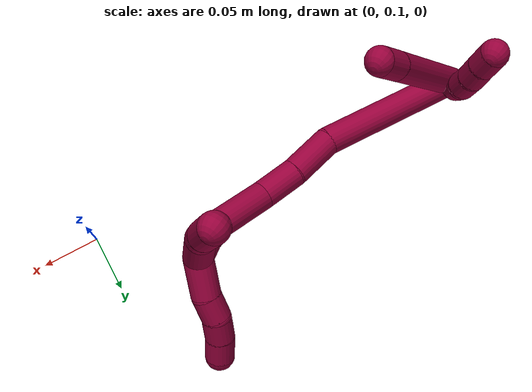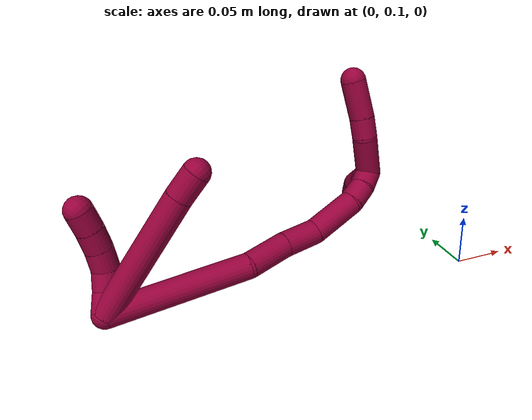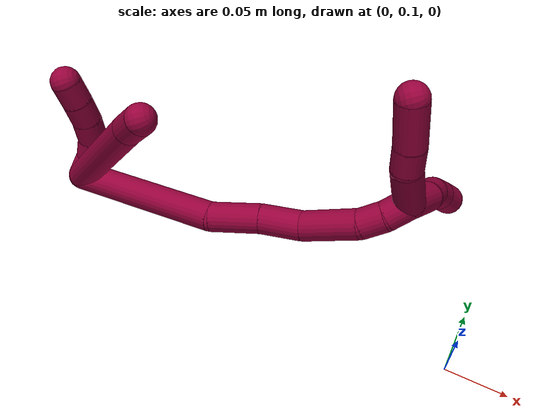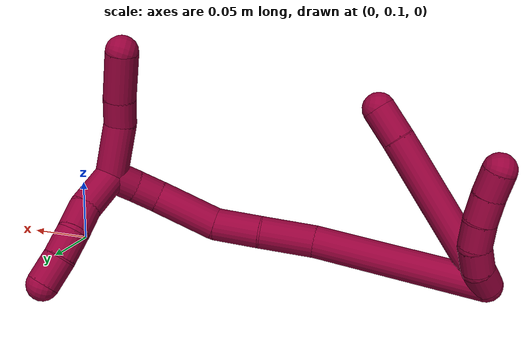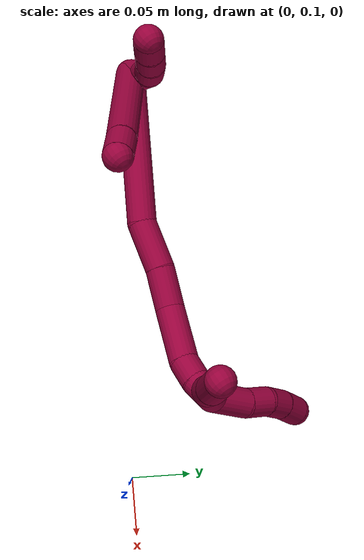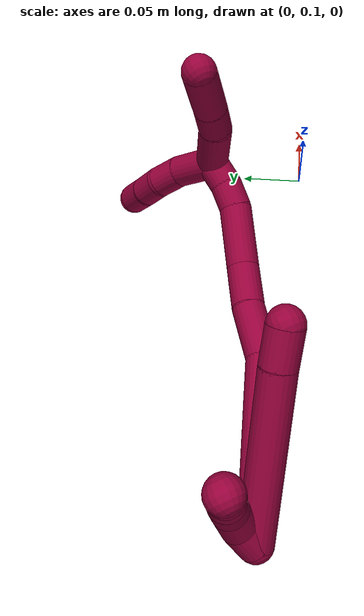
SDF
<sdf version="1.7">
 <world name="default">
  <model name="8">
   <static>0</static>
   <link name="8">
    <collision name="collision-cylinder-e_1_2_8">
     <pose>0.0312 -0.029872 -0.04415 2.54674 0.529544 1.44845</pose>
     <geometry><cylinder><radius>0.0125</radius><length>0.123531</length></cylinder></geometry>
     <surface>
      <friction><ode><mu>1.16</mu><mu2>1.16</mu2><slip1>0</slip1><slip2>0</slip2></ode></friction>
      <contact><ode><kp>1e+06</kp><kd>1</kd><max_vel>0</max_vel><min_depth>0.001</min_depth></ode></contact>
     </surface>
    </collision>
    <visual name="visual-cylinder-e_1_2_8">
     <pose>0.0312 -0.029872 -0.04415 2.54674 0.529544 1.44845</pose>
     <geometry><cylinder><radius>0.0125</radius><length>0.123531</length></cylinder></geometry>
     <material><ambient>0.584314 0 0.227451 1</ambient></material>
    </visual>
    <collision name="collision-cylinder-e_2_8_6">
     <pose>0.068509 -0.066782 -0.097696 2.49871 0.479718 1.26697</pose>
     <geometry><cylinder><radius>0.0125</radius><length>0.026469</length></cylinder></geometry>
     <surface>
      <friction><ode><mu>1.16</mu><mu2>1.16</mu2><slip1>0</slip1><slip2>0</slip2></ode></friction>
      <contact><ode><kp>1e+06</kp><kd>1</kd><max_vel>0</max_vel><min_depth>0.001</min_depth></ode></contact>
     </surface>
    </collision>
    <visual name="visual-cylinder-e_2_8_6">
     <pose>0.068509 -0.066782 -0.097696 2.49871 0.479718 1.26697</pose>
     <geometry><cylinder><radius>0.0125</radius><length>0.026469</length></cylinder></geometry>
     <material><ambient>0.584314 0 0.227451 1</ambient></material>
    </visual>
    <collision name="collision-cylinder-e_1_2_9">
     <pose>0.006618 0.001915 -0.007248 -2.88335 0.72322 -2.48023</pose>
     <geometry><cylinder><radius>0.0125</radius><length>0.02</length></cylinder></geometry>
     <surface>
      <friction><ode><mu>1.16</mu><mu2>1.16</mu2><slip1>0</slip1><slip2>0</slip2></ode></friction>
      <contact><ode><kp>1e+06</kp><kd>1</kd><max_vel>0</max_vel><min_depth>0.001</min_depth></ode></contact>
     </surface>
    </collision>
    <visual name="visual-cylinder-e_1_2_9">
     <pose>0.006618 0.001915 -0.007248 -2.88335 0.72322 -2.48023</pose>
     <geometry><cylinder><radius>0.0125</radius><length>0.02</length></cylinder></geometry>
     <material><ambient>0.584314 0 0.227451 1</ambient></material>
    </visual>
    <collision name="collision-cylinder-e_2_9_10">
     <pose>0.021594 0.003762 -0.019987 3.12928 0.989497 3.11878</pose>
     <geometry><cylinder><radius>0.0125</radius><length>0.02</length></cylinder></geometry>
     <surface>
      <friction><ode><mu>1.16</mu><mu2>1.16</mu2><slip1>0</slip1><slip2>0</slip2></ode></friction>
      <contact><ode><kp>1e+06</kp><kd>1</kd><max_vel>0</max_vel><min_depth>0.001</min_depth></ode></contact>
     </surface>
    </collision>
    <visual name="visual-cylinder-e_2_9_10">
     <pose>0.021594 0.003762 -0.019987 3.12928 0.989497 3.11878</pose>
     <geometry><cylinder><radius>0.0125</radius><length>0.02</length></cylinder></geometry>
     <material><ambient>0.584314 0 0.227451 1</ambient></material>
    </visual>
    <collision name="collision-cylinder-e_3_10_11">
     <pose>0.039585 0.002852 -0.028022 2.82204 1.29945 2.72358</pose>
     <geometry><cylinder><radius>0.0125</radius><length>0.02</length></cylinder></geometry>
     <surface>
      <friction><ode><mu>1.16</mu><mu2>1.16</mu2><slip1>0</slip1><slip2>0</slip2></ode></friction>
      <contact><ode><kp>1e+06</kp><kd>1</kd><max_vel>0</max_vel><min_depth>0.001</min_depth></ode></contact>
     </surface>
    </collision>
    <visual name="visual-cylinder-e_3_10_11">
     <pose>0.039585 0.002852 -0.028022 2.82204 1.29945 2.72358</pose>
     <geometry><cylinder><radius>0.0125</radius><length>0.02</length></cylinder></geometry>
     <material><ambient>0.584314 0 0.227451 1</ambient></material>
    </visual>
    <collision name="collision-cylinder-e_4_11_12">
     <pose>0.059054 0.000735 -0.031852 2.36003 1.38882 2.22281</pose>
     <geometry><cylinder><radius>0.0125</radius><length>0.02</length></cylinder></geometry>
     <surface>
      <friction><ode><mu>1.16</mu><mu2>1.16</mu2><slip1>0</slip1><slip2>0</slip2></ode></friction>
      <contact><ode><kp>1e+06</kp><kd>1</kd><max_vel>0</max_vel><min_depth>0.001</min_depth></ode></contact>
     </surface>
    </collision>
    <visual name="visual-cylinder-e_4_11_12">
     <pose>0.059054 0.000735 -0.031852 2.36003 1.38882 2.22281</pose>
     <geometry><cylinder><radius>0.0125</radius><length>0.02</length></cylinder></geometry>
     <material><ambient>0.584314 0 0.227451 1</ambient></material>
    </visual>
    <collision name="collision-cylinder-e_5_12_5">
     <pose>0.078826 -0.001433 -0.033815 2.22063 1.4583 2.12788</pose>
     <geometry><cylinder><radius>0.0125</radius><length>0.02</length></cylinder></geometry>
     <surface>
      <friction><ode><mu>1.16</mu><mu2>1.16</mu2><slip1>0</slip1><slip2>0</slip2></ode></friction>
      <contact><ode><kp>1e+06</kp><kd>1</kd><max_vel>0</max_vel><min_depth>0.001</min_depth></ode></contact>
     </surface>
    </collision>
    <visual name="visual-cylinder-e_5_12_5">
     <pose>0.078826 -0.001433 -0.033815 2.22063 1.4583 2.12788</pose>
     <geometry><cylinder><radius>0.0125</radius><length>0.02</length></cylinder></geometry>
     <material><ambient>0.584314 0 0.227451 1</ambient></material>
    </visual>
    <collision name="collision-cylinder-e_1_2_13">
     <pose>-0.01944 -0.02837 -0.056332 2.67505 -0.298985 -1.12997</pose>
     <geometry><cylinder><radius>0.0125</radius><length>0.132</length></cylinder></geometry>
     <surface>
      <friction><ode><mu>1.16</mu><mu2>1.16</mu2><slip1>0</slip1><slip2>0</slip2></ode></friction>
      <contact><ode><kp>1e+06</kp><kd>1</kd><max_vel>0</max_vel><min_depth>0.001</min_depth></ode></contact>
     </surface>
    </collision>
    <visual name="visual-cylinder-e_1_2_13">
     <pose>-0.01944 -0.02837 -0.056332 2.67505 -0.298985 -1.12997</pose>
     <geometry><cylinder><radius>0.0125</radius><length>0.132</length></cylinder></geometry>
     <material><ambient>0.584314 0 0.227451 1</ambient></material>
    </visual>
    <collision name="collision-cylinder-e_2_13_14">
     <pose>-0.043771 -0.060201 -0.133113 2.97392 -0.231558 -1.89018</pose>
     <geometry><cylinder><radius>0.0125</radius><length>0.042618</length></cylinder></geometry>
     <surface>
      <friction><ode><mu>1.16</mu><mu2>1.16</mu2><slip1>0</slip1><slip2>0</slip2></ode></friction>
      <contact><ode><kp>1e+06</kp><kd>1</kd><max_vel>0</max_vel><min_depth>0.001</min_depth></ode></contact>
     </surface>
    </collision>
    <visual name="visual-cylinder-e_2_13_14">
     <pose>-0.043771 -0.060201 -0.133113 2.97392 -0.231558 -1.89018</pose>
     <geometry><cylinder><radius>0.0125</radius><length>0.042618</length></cylinder></geometry>
     <material><ambient>0.584314 0 0.227451 1</ambient></material>
    </visual>
    <collision name="collision-cylinder-e_3_14_15">
     <pose>-0.05374 -0.068586 -0.169669 2.84493 -0.292847 -1.55766</pose>
     <geometry><cylinder><radius>0.0125</radius><length>0.035183</length></cylinder></geometry>
     <surface>
      <friction><ode><mu>1.16</mu><mu2>1.16</mu2><slip1>0</slip1><slip2>0</slip2></ode></friction>
      <contact><ode><kp>1e+06</kp><kd>1</kd><max_vel>0</max_vel><min_depth>0.001</min_depth></ode></contact>
     </surface>
    </collision>
    <visual name="visual-cylinder-e_3_14_15">
     <pose>-0.05374 -0.068586 -0.169669 2.84493 -0.292847 -1.55766</pose>
     <geometry><cylinder><radius>0.0125</radius><length>0.035183</length></cylinder></geometry>
     <material><ambient>0.584314 0 0.227451 1</ambient></material>
    </visual>
    <collision name="collision-cylinder-e_4_15_16">
     <pose>-0.058715 -0.081136 -0.209182 2.82661 0.004161 0.026202</pose>
     <geometry><cylinder><radius>0.0125</radius><length>0.049234</length></cylinder></geometry>
     <surface>
      <friction><ode><mu>1.16</mu><mu2>1.16</mu2><slip1>0</slip1><slip2>0</slip2></ode></friction>
      <contact><ode><kp>1e+06</kp><kd>1</kd><max_vel>0</max_vel><min_depth>0.001</min_depth></ode></contact>
     </surface>
    </collision>
    <visual name="visual-cylinder-e_4_15_16">
     <pose>-0.058715 -0.081136 -0.209182 2.82661 0.004161 0.026202</pose>
     <geometry><cylinder><radius>0.0125</radius><length>0.049234</length></cylinder></geometry>
     <material><ambient>0.584314 0 0.227451 1</ambient></material>
    </visual>
    <collision name="collision-cylinder-e_5_16_17">
     <pose>-0.057312 -0.089402 -0.242874 3.07941 0.125523 2.22249</pose>
     <geometry><cylinder><radius>0.0125</radius><length>0.020777</length></cylinder></geometry>
     <surface>
      <friction><ode><mu>1.16</mu><mu2>1.16</mu2><slip1>0</slip1><slip2>0</slip2></ode></friction>
      <contact><ode><kp>1e+06</kp><kd>1</kd><max_vel>0</max_vel><min_depth>0.001</min_depth></ode></contact>
     </surface>
    </collision>
    <visual name="visual-cylinder-e_5_16_17">
     <pose>-0.057312 -0.089402 -0.242874 3.07941 0.125523 2.22249</pose>
     <geometry><cylinder><radius>0.0125</radius><length>0.020777</length></cylinder></geometry>
     <material><ambient>0.584314 0 0.227451 1</ambient></material>
    </visual>
    <collision name="collision-cylinder-e_6_17_1">
     <pose>-0.053944 -0.08876 -0.262957 -3.01143 0.206299 -2.01778</pose>
     <geometry><cylinder><radius>0.0125</radius><length>0.020188</length></cylinder></geometry>
     <surface>
      <friction><ode><mu>1.16</mu><mu2>1.16</mu2><slip1>0</slip1><slip2>0</slip2></ode></friction>
      <contact><ode><kp>1e+06</kp><kd>1</kd><max_vel>0</max_vel><min_depth>0.001</min_depth></ode></contact>
     </surface>
    </collision>
    <visual name="visual-cylinder-e_6_17_1">
     <pose>-0.053944 -0.08876 -0.262957 -3.01143 0.206299 -2.01778</pose>
     <geometry><cylinder><radius>0.0125</radius><length>0.020188</length></cylinder></geometry>
     <material><ambient>0.584314 0 0.227451 1</ambient></material>
    </visual>
    <collision name="collision-cylinder-e_1_1_18">
     <pose>-0.031844 -0.092521 -0.275834 2.11924 1.28393 1.85425</pose>
     <geometry><cylinder><radius>0.0125</radius><length>0.041772</length></cylinder></geometry>
     <surface>
      <friction><ode><mu>1.16</mu><mu2>1.16</mu2><slip1>0</slip1><slip2>0</slip2></ode></friction>
      <contact><ode><kp>1e+06</kp><kd>1</kd><max_vel>0</max_vel><min_depth>0.001</min_depth></ode></contact>
     </surface>
    </collision>
    <visual name="visual-cylinder-e_1_1_18">
     <pose>-0.031844 -0.092521 -0.275834 2.11924 1.28393 1.85425</pose>
     <geometry><cylinder><radius>0.0125</radius><length>0.041772</length></cylinder></geometry>
     <material><ambient>0.584314 0 0.227451 1</ambient></material>
    </visual>
    <collision name="collision-cylinder-e_2_18_19">
     <pose>-0.00214 -0.098121 -0.282264 2.97662 1.23324 2.90937</pose>
     <geometry><cylinder><radius>0.0125</radius><length>0.020502</length></cylinder></geometry>
     <surface>
      <friction><ode><mu>1.16</mu><mu2>1.16</mu2><slip1>0</slip1><slip2>0</slip2></ode></friction>
      <contact><ode><kp>1e+06</kp><kd>1</kd><max_vel>0</max_vel><min_depth>0.001</min_depth></ode></contact>
     </surface>
    </collision>
    <visual name="visual-cylinder-e_2_18_19">
     <pose>-0.00214 -0.098121 -0.282264 2.97662 1.23324 2.90937</pose>
     <geometry><cylinder><radius>0.0125</radius><length>0.020502</length></cylinder></geometry>
     <material><ambient>0.584314 0 0.227451 1</ambient></material>
    </visual>
    <collision name="collision-cylinder-e_3_19_4">
     <pose>0.025763 -0.098768 -0.290458 3.12308 1.311 3.11752</pose>
     <geometry><cylinder><radius>0.0125</radius><length>0.037727</length></cylinder></geometry>
     <surface>
      <friction><ode><mu>1.16</mu><mu2>1.16</mu2><slip1>0</slip1><slip2>0</slip2></ode></friction>
      <contact><ode><kp>1e+06</kp><kd>1</kd><max_vel>0</max_vel><min_depth>0.001</min_depth></ode></contact>
     </surface>
    </collision>
    <visual name="visual-cylinder-e_3_19_4">
     <pose>0.025763 -0.098768 -0.290458 3.12308 1.311 3.11752</pose>
     <geometry><cylinder><radius>0.0125</radius><length>0.037727</length></cylinder></geometry>
     <material><ambient>0.584314 0 0.227451 1</ambient></material>
    </visual>
    <collision name="collision-cylinder-e_1_1_20">
     <pose>-0.061095 -0.074962 -0.279382 -2.05787 -0.576986 0.916074</pose>
     <geometry><cylinder><radius>0.0125</radius><length>0.033797</length></cylinder></geometry>
     <surface>
      <friction><ode><mu>1.16</mu><mu2>1.16</mu2><slip1>0</slip1><slip2>0</slip2></ode></friction>
      <contact><ode><kp>1e+06</kp><kd>1</kd><max_vel>0</max_vel><min_depth>0.001</min_depth></ode></contact>
     </surface>
    </collision>
    <visual name="visual-cylinder-e_1_1_20">
     <pose>-0.061095 -0.074962 -0.279382 -2.05787 -0.576986 0.916074</pose>
     <geometry><cylinder><radius>0.0125</radius><length>0.033797</length></cylinder></geometry>
     <material><ambient>0.584314 0 0.227451 1</ambient></material>
    </visual>
    <collision name="collision-cylinder-e_2_20_21">
     <pose>-0.076087 -0.053249 -0.288071 -1.79115 -0.549661 0.677109</pose>
     <geometry><cylinder><radius>0.0125</radius><length>0.022107</length></cylinder></geometry>
     <surface>
      <friction><ode><mu>1.16</mu><mu2>1.16</mu2><slip1>0</slip1><slip2>0</slip2></ode></friction>
      <contact><ode><kp>1e+06</kp><kd>1</kd><max_vel>0</max_vel><min_depth>0.001</min_depth></ode></contact>
     </surface>
    </collision>
    <visual name="visual-cylinder-e_2_20_21">
     <pose>-0.076087 -0.053249 -0.288071 -1.79115 -0.549661 0.677109</pose>
     <geometry><cylinder><radius>0.0125</radius><length>0.022107</length></cylinder></geometry>
     <material><ambient>0.584314 0 0.227451 1</ambient></material>
    </visual>
    <collision name="collision-cylinder-e_3_21_22">
     <pose>-0.089833 -0.037157 -0.292361 -1.88356 -0.833033 1.09259</pose>
     <geometry><cylinder><radius>0.0125</radius><length>0.021546</length></cylinder></geometry>
     <surface>
      <friction><ode><mu>1.16</mu><mu2>1.16</mu2><slip1>0</slip1><slip2>0</slip2></ode></friction>
      <contact><ode><kp>1e+06</kp><kd>1</kd><max_vel>0</max_vel><min_depth>0.001</min_depth></ode></contact>
     </surface>
    </collision>
    <visual name="visual-cylinder-e_3_21_22">
     <pose>-0.089833 -0.037157 -0.292361 -1.88356 -0.833033 1.09259</pose>
     <geometry><cylinder><radius>0.0125</radius><length>0.021546</length></cylinder></geometry>
     <material><ambient>0.584314 0 0.227451 1</ambient></material>
    </visual>
    <collision name="collision-cylinder-e_4_22_3">
     <pose>-0.106784 -0.02417 -0.297654 -2.03679 -0.921246 1.35559</pose>
     <geometry><cylinder><radius>0.0125</radius><length>0.02255</length></cylinder></geometry>
     <surface>
      <friction><ode><mu>1.16</mu><mu2>1.16</mu2><slip1>0</slip1><slip2>0</slip2></ode></friction>
      <contact><ode><kp>1e+06</kp><kd>1</kd><max_vel>0</max_vel><min_depth>0.001</min_depth></ode></contact>
     </surface>
    </collision>
    <visual name="visual-cylinder-e_4_22_3">
     <pose>-0.106784 -0.02417 -0.297654 -2.03679 -0.921246 1.35559</pose>
     <geometry><cylinder><radius>0.0125</radius><length>0.02255</length></cylinder></geometry>
     <material><ambient>0.584314 0 0.227451 1</ambient></material>
    </visual>
    <collision name="collision-sphere-3">
     <pose>-0.115763 -0.018078 -0.300718 0 -0 0</pose>
     <geometry><sphere><radius>0.0125</radius></sphere></geometry>
     <surface>
      <friction><ode><mu>1.16</mu><mu2>1.16</mu2><slip1>0</slip1><slip2>0</slip2></ode></friction>
      <contact><ode><kp>1e+06</kp><kd>1</kd><max_vel>0</max_vel><min_depth>0.001</min_depth></ode></contact>
     </surface>
    </collision>
    <visual name="visual-sphere-3">
     <pose>-0.115763 -0.018078 -0.300718 0 -0 0</pose>
     <geometry><sphere><radius>0.0125</radius></sphere></geometry>
     <material><ambient>0.584314 0 0.227451 1</ambient></material>
    </visual>
    <collision name="collision-sphere-22">
     <pose>-0.097805 -0.030263 -0.29459 0 -0 0</pose>
     <geometry><sphere><radius>0.0125</radius></sphere></geometry>
     <surface>
      <friction><ode><mu>1.16</mu><mu2>1.16</mu2><slip1>0</slip1><slip2>0</slip2></ode></friction>
      <contact><ode><kp>1e+06</kp><kd>1</kd><max_vel>0</max_vel><min_depth>0.001</min_depth></ode></contact>
     </surface>
    </collision>
    <visual name="visual-sphere-22">
     <pose>-0.097805 -0.030263 -0.29459 0 -0 0</pose>
     <geometry><sphere><radius>0.0125</radius></sphere></geometry>
     <material><ambient>0.584314 0 0.227451 1</ambient></material>
    </visual>
    <collision name="collision-sphere-21">
     <pose>-0.081861 -0.044052 -0.290131 0 -0 0</pose>
     <geometry><sphere><radius>0.0125</radius></sphere></geometry>
     <surface>
      <friction><ode><mu>1.16</mu><mu2>1.16</mu2><slip1>0</slip1><slip2>0</slip2></ode></friction>
      <contact><ode><kp>1e+06</kp><kd>1</kd><max_vel>0</max_vel><min_depth>0.001</min_depth></ode></contact>
     </surface>
    </collision>
    <visual name="visual-sphere-21">
     <pose>-0.081861 -0.044052 -0.290131 0 -0 0</pose>
     <geometry><sphere><radius>0.0125</radius></sphere></geometry>
     <material><ambient>0.584314 0 0.227451 1</ambient></material>
    </visual>
    <collision name="collision-sphere-20">
     <pose>-0.070313 -0.062447 -0.286011 0 -0 0</pose>
     <geometry><sphere><radius>0.0125</radius></sphere></geometry>
     <surface>
      <friction><ode><mu>1.16</mu><mu2>1.16</mu2><slip1>0</slip1><slip2>0</slip2></ode></friction>
      <contact><ode><kp>1e+06</kp><kd>1</kd><max_vel>0</max_vel><min_depth>0.001</min_depth></ode></contact>
     </surface>
    </collision>
    <visual name="visual-sphere-20">
     <pose>-0.070313 -0.062447 -0.286011 0 -0 0</pose>
     <geometry><sphere><radius>0.0125</radius></sphere></geometry>
     <material><ambient>0.584314 0 0.227451 1</ambient></material>
    </visual>
    <collision name="collision-sphere-4">
     <pose>0.043993 -0.098858 -0.295302 0 -0 0</pose>
     <geometry><sphere><radius>0.0125</radius></sphere></geometry>
     <surface>
      <friction><ode><mu>1.16</mu><mu2>1.16</mu2><slip1>0</slip1><slip2>0</slip2></ode></friction>
      <contact><ode><kp>1e+06</kp><kd>1</kd><max_vel>0</max_vel><min_depth>0.001</min_depth></ode></contact>
     </surface>
    </collision>
    <visual name="visual-sphere-4">
     <pose>0.043993 -0.098858 -0.295302 0 -0 0</pose>
     <geometry><sphere><radius>0.0125</radius></sphere></geometry>
     <material><ambient>0.584314 0 0.227451 1</ambient></material>
    </visual>
    <collision name="collision-sphere-11">
     <pose>0.049219 0.00201 -0.030567 0 -0 0</pose>
     <geometry><sphere><radius>0.0125</radius></sphere></geometry>
     <surface>
      <friction><ode><mu>1.16</mu><mu2>1.16</mu2><slip1>0</slip1><slip2>0</slip2></ode></friction>
      <contact><ode><kp>1e+06</kp><kd>1</kd><max_vel>0</max_vel><min_depth>0.001</min_depth></ode></contact>
     </surface>
    </collision>
    <visual name="visual-sphere-11">
     <pose>0.049219 0.00201 -0.030567 0 -0 0</pose>
     <geometry><sphere><radius>0.0125</radius></sphere></geometry>
     <material><ambient>0.584314 0 0.227451 1</ambient></material>
    </visual>
    <collision name="collision-sphere-10">
     <pose>0.029951 0.003694 -0.025478 0 -0 0</pose>
     <geometry><sphere><radius>0.0125</radius></sphere></geometry>
     <surface>
      <friction><ode><mu>1.16</mu><mu2>1.16</mu2><slip1>0</slip1><slip2>0</slip2></ode></friction>
      <contact><ode><kp>1e+06</kp><kd>1</kd><max_vel>0</max_vel><min_depth>0.001</min_depth></ode></contact>
     </surface>
    </collision>
    <visual name="visual-sphere-10">
     <pose>0.029951 0.003694 -0.025478 0 -0 0</pose>
     <geometry><sphere><radius>0.0125</radius></sphere></geometry>
     <material><ambient>0.584314 0 0.227451 1</ambient></material>
    </visual>
    <collision name="collision-sphere-6">
     <pose>0.074617 -0.073821 -0.107093 0 -0 0</pose>
     <geometry><sphere><radius>0.0125</radius></sphere></geometry>
     <surface>
      <friction><ode><mu>1.16</mu><mu2>1.16</mu2><slip1>0</slip1><slip2>0</slip2></ode></friction>
      <contact><ode><kp>1e+06</kp><kd>1</kd><max_vel>0</max_vel><min_depth>0.001</min_depth></ode></contact>
     </surface>
    </collision>
    <visual name="visual-sphere-6">
     <pose>0.074617 -0.073821 -0.107093 0 -0 0</pose>
     <geometry><sphere><radius>0.0125</radius></sphere></geometry>
     <material><ambient>0.584314 0 0.227451 1</ambient></material>
    </visual>
    <collision name="collision-sphere-9">
     <pose>0.013236 0.003829 -0.014496 0 -0 0</pose>
     <geometry><sphere><radius>0.0125</radius></sphere></geometry>
     <surface>
      <friction><ode><mu>1.16</mu><mu2>1.16</mu2><slip1>0</slip1><slip2>0</slip2></ode></friction>
      <contact><ode><kp>1e+06</kp><kd>1</kd><max_vel>0</max_vel><min_depth>0.001</min_depth></ode></contact>
     </surface>
    </collision>
    <visual name="visual-sphere-9">
     <pose>0.013236 0.003829 -0.014496 0 -0 0</pose>
     <geometry><sphere><radius>0.0125</radius></sphere></geometry>
     <material><ambient>0.584314 0 0.227451 1</ambient></material>
    </visual>
    <collision name="collision-sphere-2">
     <geometry><sphere><radius>0.0125</radius></sphere></geometry>
     <surface>
      <friction><ode><mu>1.16</mu><mu2>1.16</mu2><slip1>0</slip1><slip2>0</slip2></ode></friction>
      <contact><ode><kp>1e+06</kp><kd>1</kd><max_vel>0</max_vel><min_depth>0.001</min_depth></ode></contact>
     </surface>
    </collision>
    <visual name="visual-sphere-2">
     <geometry><sphere><radius>0.0125</radius></sphere></geometry>
     <material><ambient>0.584314 0 0.227451 1</ambient></material>
    </visual>
    <collision name="collision-sphere-19">
     <pose>0.007533 -0.098679 -0.285613 0 -0 0</pose>
     <geometry><sphere><radius>0.0125</radius></sphere></geometry>
     <surface>
      <friction><ode><mu>1.16</mu><mu2>1.16</mu2><slip1>0</slip1><slip2>0</slip2></ode></friction>
      <contact><ode><kp>1e+06</kp><kd>1</kd><max_vel>0</max_vel><min_depth>0.001</min_depth></ode></contact>
     </surface>
    </collision>
    <visual name="visual-sphere-19">
     <pose>0.007533 -0.098679 -0.285613 0 -0 0</pose>
     <geometry><sphere><radius>0.0125</radius></sphere></geometry>
     <material><ambient>0.584314 0 0.227451 1</ambient></material>
    </visual>
    <collision name="collision-sphere-8">
     <pose>0.0624 -0.059744 -0.088299 0 -0 0</pose>
     <geometry><sphere><radius>0.0125</radius></sphere></geometry>
     <surface>
      <friction><ode><mu>1.16</mu><mu2>1.16</mu2><slip1>0</slip1><slip2>0</slip2></ode></friction>
      <contact><ode><kp>1e+06</kp><kd>1</kd><max_vel>0</max_vel><min_depth>0.001</min_depth></ode></contact>
     </surface>
    </collision>
    <visual name="visual-sphere-8">
     <pose>0.0624 -0.059744 -0.088299 0 -0 0</pose>
     <geometry><sphere><radius>0.0125</radius></sphere></geometry>
     <material><ambient>0.584314 0 0.227451 1</ambient></material>
    </visual>
    <collision name="collision-sphere-12">
     <pose>0.068889 -0.00054 -0.033136 0 -0 0</pose>
     <geometry><sphere><radius>0.0125</radius></sphere></geometry>
     <surface>
      <friction><ode><mu>1.16</mu><mu2>1.16</mu2><slip1>0</slip1><slip2>0</slip2></ode></friction>
      <contact><ode><kp>1e+06</kp><kd>1</kd><max_vel>0</max_vel><min_depth>0.001</min_depth></ode></contact>
     </surface>
    </collision>
    <visual name="visual-sphere-12">
     <pose>0.068889 -0.00054 -0.033136 0 -0 0</pose>
     <geometry><sphere><radius>0.0125</radius></sphere></geometry>
     <material><ambient>0.584314 0 0.227451 1</ambient></material>
    </visual>
    <collision name="collision-sphere-5">
     <pose>0.088763 -0.002327 -0.034495 0 -0 0</pose>
     <geometry><sphere><radius>0.0125</radius></sphere></geometry>
     <surface>
      <friction><ode><mu>1.16</mu><mu2>1.16</mu2><slip1>0</slip1><slip2>0</slip2></ode></friction>
      <contact><ode><kp>1e+06</kp><kd>1</kd><max_vel>0</max_vel><min_depth>0.001</min_depth></ode></contact>
     </surface>
    </collision>
    <visual name="visual-sphere-5">
     <pose>0.088763 -0.002327 -0.034495 0 -0 0</pose>
     <geometry><sphere><radius>0.0125</radius></sphere></geometry>
     <material><ambient>0.584314 0 0.227451 1</ambient></material>
    </visual>
    <collision name="collision-sphere-13">
     <pose>-0.038881 -0.05674 -0.112663 0 -0 0</pose>
     <geometry><sphere><radius>0.0125</radius></sphere></geometry>
     <surface>
      <friction><ode><mu>1.16</mu><mu2>1.16</mu2><slip1>0</slip1><slip2>0</slip2></ode></friction>
      <contact><ode><kp>1e+06</kp><kd>1</kd><max_vel>0</max_vel><min_depth>0.001</min_depth></ode></contact>
     </surface>
    </collision>
    <visual name="visual-sphere-13">
     <pose>-0.038881 -0.05674 -0.112663 0 -0 0</pose>
     <geometry><sphere><radius>0.0125</radius></sphere></geometry>
     <material><ambient>0.584314 0 0.227451 1</ambient></material>
    </visual>
    <collision name="collision-sphere-14">
     <pose>-0.048661 -0.063662 -0.153563 0 -0 0</pose>
     <geometry><sphere><radius>0.0125</radius></sphere></geometry>
     <surface>
      <friction><ode><mu>1.16</mu><mu2>1.16</mu2><slip1>0</slip1><slip2>0</slip2></ode></friction>
      <contact><ode><kp>1e+06</kp><kd>1</kd><max_vel>0</max_vel><min_depth>0.001</min_depth></ode></contact>
     </surface>
    </collision>
    <visual name="visual-sphere-14">
     <pose>-0.048661 -0.063662 -0.153563 0 -0 0</pose>
     <geometry><sphere><radius>0.0125</radius></sphere></geometry>
     <material><ambient>0.584314 0 0.227451 1</ambient></material>
    </visual>
    <collision name="collision-sphere-15">
     <pose>-0.058818 -0.073509 -0.185776 0 -0 0</pose>
     <geometry><sphere><radius>0.0125</radius></sphere></geometry>
     <surface>
      <friction><ode><mu>1.16</mu><mu2>1.16</mu2><slip1>0</slip1><slip2>0</slip2></ode></friction>
      <contact><ode><kp>1e+06</kp><kd>1</kd><max_vel>0</max_vel><min_depth>0.001</min_depth></ode></contact>
     </surface>
    </collision>
    <visual name="visual-sphere-15">
     <pose>-0.058818 -0.073509 -0.185776 0 -0 0</pose>
     <geometry><sphere><radius>0.0125</radius></sphere></geometry>
     <material><ambient>0.584314 0 0.227451 1</ambient></material>
    </visual>
    <collision name="collision-sphere-16">
     <pose>-0.058613 -0.088762 -0.232587 0 -0 0</pose>
     <geometry><sphere><radius>0.0125</radius></sphere></geometry>
     <surface>
      <friction><ode><mu>1.16</mu><mu2>1.16</mu2><slip1>0</slip1><slip2>0</slip2></ode></friction>
      <contact><ode><kp>1e+06</kp><kd>1</kd><max_vel>0</max_vel><min_depth>0.001</min_depth></ode></contact>
     </surface>
    </collision>
    <visual name="visual-sphere-16">
     <pose>-0.058613 -0.088762 -0.232587 0 -0 0</pose>
     <geometry><sphere><radius>0.0125</radius></sphere></geometry>
     <material><ambient>0.584314 0 0.227451 1</ambient></material>
    </visual>
    <collision name="collision-sphere-17">
     <pose>-0.056012 -0.090043 -0.253161 0 -0 0</pose>
     <geometry><sphere><radius>0.0125</radius></sphere></geometry>
     <surface>
      <friction><ode><mu>1.16</mu><mu2>1.16</mu2><slip1>0</slip1><slip2>0</slip2></ode></friction>
      <contact><ode><kp>1e+06</kp><kd>1</kd><max_vel>0</max_vel><min_depth>0.001</min_depth></ode></contact>
     </surface>
    </collision>
    <visual name="visual-sphere-17">
     <pose>-0.056012 -0.090043 -0.253161 0 -0 0</pose>
     <geometry><sphere><radius>0.0125</radius></sphere></geometry>
     <material><ambient>0.584314 0 0.227451 1</ambient></material>
    </visual>
    <collision name="collision-sphere-1">
     <pose>-0.051877 -0.087478 -0.272753 0 -0 0</pose>
     <geometry><sphere><radius>0.0125</radius></sphere></geometry>
     <surface>
      <friction><ode><mu>1.16</mu><mu2>1.16</mu2><slip1>0</slip1><slip2>0</slip2></ode></friction>
      <contact><ode><kp>1e+06</kp><kd>1</kd><max_vel>0</max_vel><min_depth>0.001</min_depth></ode></contact>
     </surface>
    </collision>
    <visual name="visual-sphere-1">
     <pose>-0.051877 -0.087478 -0.272753 0 -0 0</pose>
     <geometry><sphere><radius>0.0125</radius></sphere></geometry>
     <material><ambient>0.584314 0 0.227451 1</ambient></material>
    </visual>
    <collision name="collision-sphere-18">
     <pose>-0.011812 -0.097564 -0.278915 0 -0 0</pose>
     <geometry><sphere><radius>0.0125</radius></sphere></geometry>
     <surface>
      <friction><ode><mu>1.16</mu><mu2>1.16</mu2><slip1>0</slip1><slip2>0</slip2></ode></friction>
      <contact><ode><kp>1e+06</kp><kd>1</kd><max_vel>0</max_vel><min_depth>0.001</min_depth></ode></contact>
     </surface>
    </collision>
    <visual name="visual-sphere-18">
     <pose>-0.011812 -0.097564 -0.278915 0 -0 0</pose>
     <geometry><sphere><radius>0.0125</radius></sphere></geometry>
     <material><ambient>0.584314 0 0.227451 1</ambient></material>
    </visual>
    <inertial>
     <pose>-0.013606 -0.048437 -0.143039 0 -0 0</pose>
     <mass>0.75</mass>
     <inertia><ixx>8.3e-05</ixx><ixy>0</ixy><ixz>0</ixz><iyy>-4.6e-05</iyy><iyz>0</iyz><izz>9.2e-05</izz></inertia>
    </inertial>
   </link>
   <pose>-0.348936 0.125294 0.017151 -2.49355 -1.14052 2.97489</pose>
  </model>
 </world>
</sdf>
